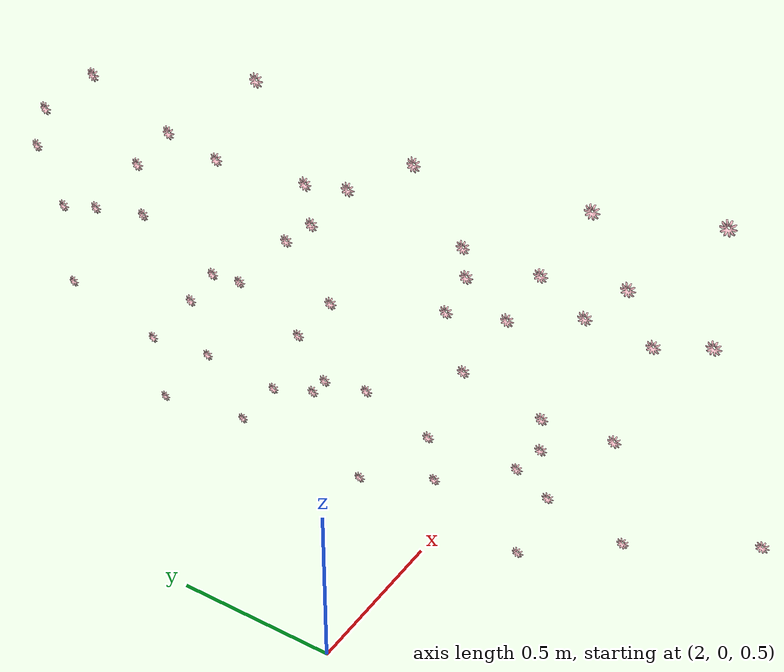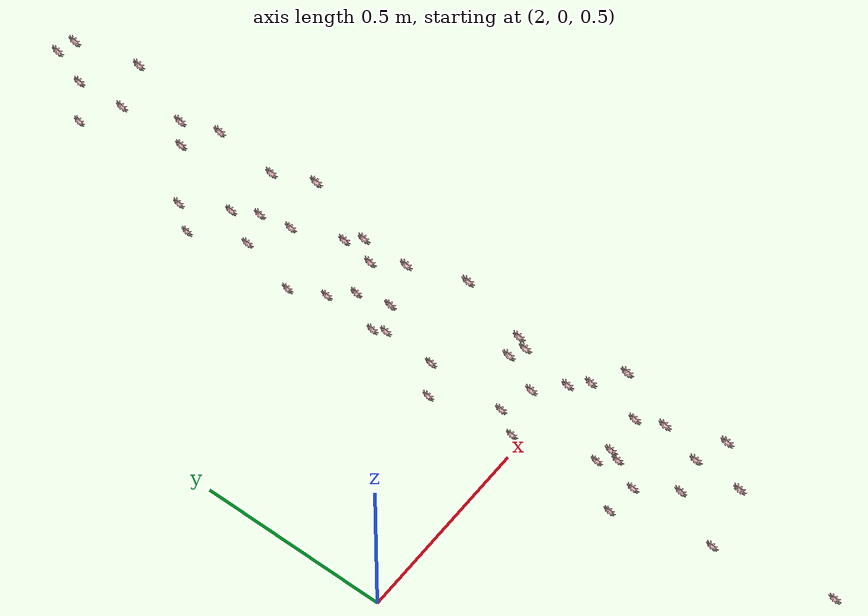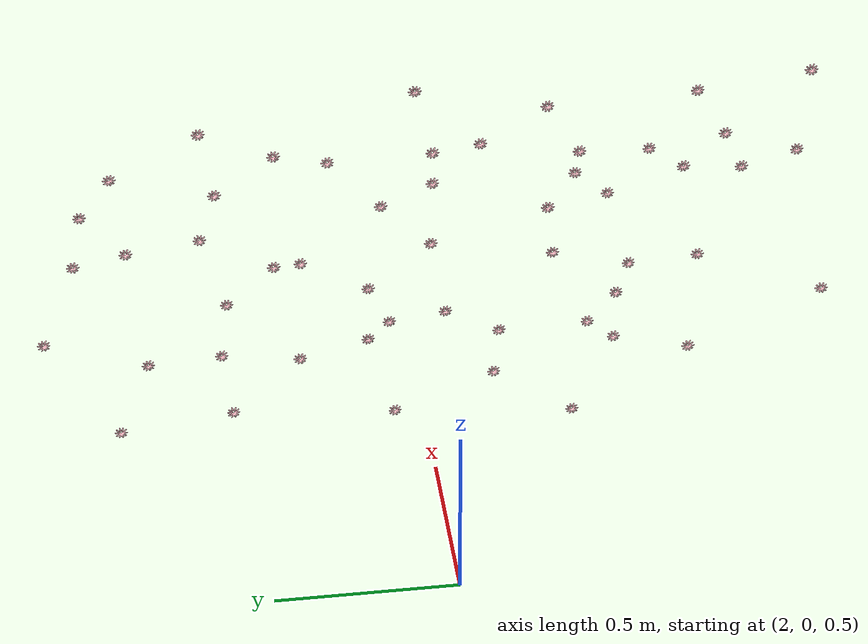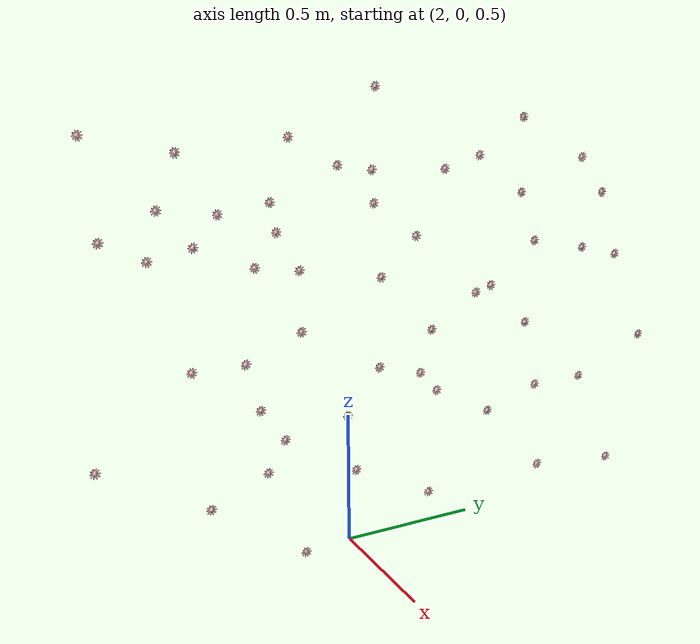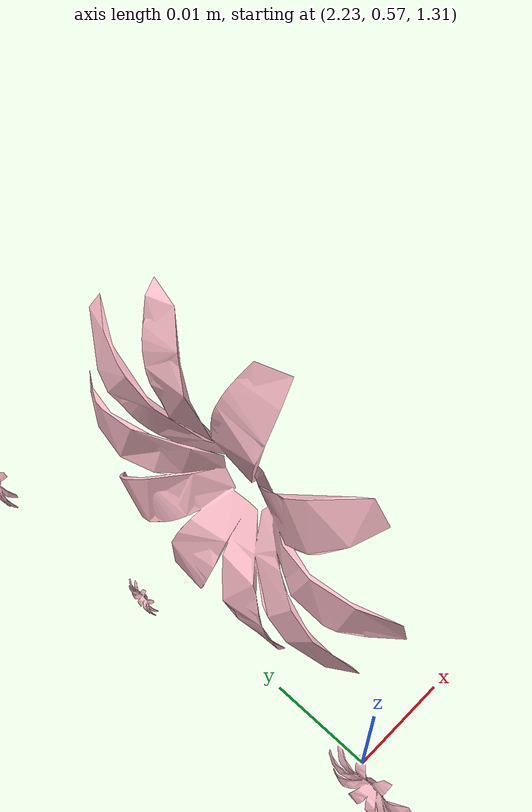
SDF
<sdf version="1.4">
 <world name="pollination_world">
  <include><uri>model://sun</uri></include>
  <include>
   <uri>model://flower2</uri>
   <name>target0</name>
   <pose>2.024 -0.885 2.1180000000000003 0 -1.57 0</pose>
  </include>
  <include><uri>model://flower2</uri><name>target1</name><pose>2.11 -0.871 1.803 0 -1.57 0</pose></include>
  <include>
   <uri>model://flower2</uri>
   <name>target2</name>
   <pose>2.071 -0.6 2.0460000000000003 0 -1.57 0</pose>
  </include>
  <include><uri>model://flower2</uri><name>target3</name><pose>2.102 -0.681 1.879 0 -1.57 0</pose></include>
  <include><uri>model://flower2</uri><name>target4</name><pose>2.147 -0.734 1.734 0 -1.57 0</pose></include>
  <include><uri>model://flower2</uri><name>target5</name><pose>2.109 -0.484 1.844 0 -1.57 0</pose></include>
  <include><uri>model://flower2</uri><name>target6</name><pose>2.138 -0.58 1.756 0 -1.57 0</pose></include>
  <include><uri>model://flower2</uri><name>target7</name><pose>2.045 -0.208 2.052 0 -1.57 0</pose></include>
  <include><uri>model://flower2</uri><name>target8</name><pose>2.1 -0.301 1.859 0 -1.57 0</pose></include>
  <include><uri>model://flower2</uri><name>target9</name><pose>2.132 -0.295 1.767 0 -1.57 0</pose></include>
  <include><uri>model://flower2</uri><name>target10</name><pose>2.163 -0.386 1.669 0 -1.57 0</pose></include>
  <include><uri>model://flower2</uri><name>target11</name><pose>2.236 -0.457 1.377 0 -1.57 0</pose></include>
  <include><uri>model://flower2</uri><name>target12</name><pose>2.241 -0.641 1.384 0 -1.57 0</pose></include>
  <include><uri>model://flower2</uri><name>target13</name><pose>2.295 -0.435 1.235 0 -1.57 0</pose></include>
  <include><uri>model://flower2</uri><name>target14</name><pose>2.34 -0.997 1.158 0 -1.57 0</pose></include>
  <include><uri>model://flower2</uri><name>target15</name><pose>2.319 -0.363 1.127 0 -1.57 0</pose></include>
  <include><uri>model://flower2</uri><name>target16</name><pose>2.354 -0.44 1.041 0 -1.57 0</pose></include>
  <include>
   <uri>model://flower2</uri>
   <name>target17</name>
   <pose>2.377 -0.647 0.9690000000000001 0 -1.57 0</pose>
  </include>
  <include><uri>model://flower2</uri><name>target18</name><pose>2.162 -0.23 1.638 0 -1.57 0</pose></include>
  <include><uri>model://flower2</uri><name>target19</name><pose>2.217 -0.252 1.447 0 -1.57 0</pose></include>
  <include><uri>model://flower2</uri><name>target20</name><pose>2.413 -0.34 0.757 0 -1.57 0</pose></include>
  <include><uri>model://flower2</uri><name>target21</name><pose>1.982 0.141 2.178 0 -1.57 0</pose></include>
  <include><uri>model://flower2</uri><name>target22</name><pose>2.054 -0.037 1.943 0 -1.57 0</pose></include>
  <include><uri>model://flower2</uri><name>target23</name><pose>2.065 0.085 1.917 0 -1.57 0</pose></include>
  <include><uri>model://flower2</uri><name>target24</name><pose>2.082 0.083 1.807 0 -1.57 0</pose></include>
  <include><uri>model://flower2</uri><name>target25</name><pose>2.144 0.079 1.565 0 -1.57 0</pose></include>
  <include><uri>model://flower2</uri><name>target26</name><pose>2.224 0.03 1.275 0 -1.57 0</pose></include>
  <include><uri>model://flower2</uri><name>target27</name><pose>2.284 -0.121 1.15 0 -1.57 0</pose></include>
  <include>
   <uri>model://flower2</uri>
   <name>target28</name>
   <pose>2.334 -0.115 0.9710000000000001 0 -1.57 0</pose>
  </include>
  <include>
   <uri>model://flower2</uri>
   <name>target29</name>
   <pose>2.087 0.354 1.8960000000000001 0 -1.57 0</pose>
  </include>
  <include><uri>model://flower2</uri><name>target30</name><pose>2.15 0.209 1.694 0 -1.57 0</pose></include>
  <include><uri>model://flower2</uri><name>target31</name><pose>2.212 0.413 1.48 0 -1.57 0</pose></include>
  <include><uri>model://flower2</uri><name>target32</name><pose>2.218 0.235 1.375 0 -1.57 0</pose></include>
  <include><uri>model://flower2</uri><name>target33</name><pose>2.247 0.176 1.237 0 -1.57 0</pose></include>
  <include><uri>model://flower2</uri><name>target34</name><pose>2.266 0.23 1.169 0 -1.57 0</pose></include>
  <include>
   <uri>model://flower2</uri>
   <name>target35</name>
   <pose>2.363 0.147 0.8420000000000001 0 -1.57 0</pose>
  </include>
  <include><uri>model://flower2</uri><name>target36</name><pose>2.058 0.687 2.039 0 -1.57 0</pose></include>
  <include><uri>model://flower2</uri><name>target37</name><pose>2.086 0.493 1.929 0 -1.57 0</pose></include>
  <include>
   <uri>model://flower2</uri>
   <name>target38</name>
   <pose>2.127 0.643 1.7890000000000001 0 -1.57 0</pose>
  </include>
  <include><uri>model://flower2</uri><name>target39</name><pose>2.165 0.68 1.619 0 -1.57 0</pose></include>
  <include><uri>model://flower2</uri><name>target40</name><pose>2.193 0.485 1.49 0 -1.57 0</pose></include>
  <include><uri>model://flower2</uri><name>target41</name><pose>2.234 0.606 1.346 0 -1.57 0</pose></include>
  <include><uri>model://flower2</uri><name>target42</name><pose>2.295 0.616 1.129 0 -1.57 0</pose></include>
  <include>
   <uri>model://flower2</uri>
   <name>target43</name>
   <pose>2.319 0.405 1.0790000000000002 0 -1.57 0</pose>
  </include>
  <include>
   <uri>model://flower2</uri>
   <name>target44</name>
   <pose>2.385 0.579 0.8620000000000001 0 -1.57 0</pose>
  </include>
  <include>
   <uri>model://flower2</uri>
   <name>target45</name>
   <pose>2.103 0.914 1.8820000000000001 0 -1.57 0</pose>
  </include>
  <include><uri>model://flower2</uri><name>target46</name><pose>2.127 0.992 1.75 0 -1.57 0</pose></include>
  <include><uri>model://flower2</uri><name>target47</name><pose>2.188 0.871 1.574 0 -1.57 0</pose></include>
  <include><uri>model://flower2</uri><name>target48</name><pose>2.202 1.008 1.534 0 -1.57 0</pose></include>
  <include><uri>model://flower2</uri><name>target49</name><pose>2.27 1.087 1.231 0 -1.57 0</pose></include>
  <include><uri>model://flower2</uri><name>target50</name><pose>2.287 0.812 1.123 0 -1.57 0</pose></include>
  <include>
   <uri>model://flower2</uri>
   <name>target51</name>
   <pose>2.384 0.882 0.8250000000000001 0 -1.57 0</pose>
  </include>
  <scene>
   <ambient>0.7 0.7 0.7 1</ambient>
   <background>0.25 0.25 0.25 1</background>
   <shadows>false</shadows>
   <sky><material>Gazebo/SkyBlue</material></sky>
  </scene>
  <light type="directional" name="some_light">
   <diffuse>1 1 1 0</diffuse>
   <specular>0.5 0.5 0.5 0</specular>
   <direction>1 1 1</direction>
  </light>
  <plugin name="ros_interface_plugin" filename="librotors_gazebo_ros_interface_plugin.so"/>
  <spherical_coordinates>
   <surface_model>EARTH_WGS84</surface_model>
   <latitude_deg>47.3667</latitude_deg>
   <longitude_deg>8.5500</longitude_deg>
   <elevation>500.0</elevation>
   <heading_deg>0</heading_deg>
  </spherical_coordinates>
  <physics type="ode">
   <ode>
    <solver><type>quick</type><iters>700</iters><sor>1.3</sor></solver>
    <constraints>
     <cfm>0</cfm>
     <erp>0.2</erp>
     <contact_max_correcting_vel>100</contact_max_correcting_vel>
     <contact_surface_layer>0.001</contact_surface_layer>
    </constraints>
   </ode>
   <max_step_size>0.01</max_step_size>
   <real_time_factor>1</real_time_factor>
   <real_time_update_rate>100</real_time_update_rate>
   <gravity>0 0 -9.8</gravity>
  </physics>
 </world>
</sdf>

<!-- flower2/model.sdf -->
<sdf version="1.5">
  <model name="flower">
    <static>true</static>
    <link name="link">
      <pose>0 0 0 0 0 0</pose>

      <visual name="visual">
        <geometry>
          <mesh>
            <uri>model://flower2/meshes/flower.STL</uri>
            <scale>0.001 0.001 0.001</scale>
          </mesh>
        </geometry>
        <material> <!-- Wheel material -->
          <ambient>1 0.75 0.79 1</ambient>
          <diffuse>1 0.75 0.79 1</diffuse>
          <specular>1 1 1 1</specular>
          <emissive>0 0 0 1</emissive>
        </material> <!-- End wheel material -->
      </visual>

    </link>
  </model>
</sdf>
